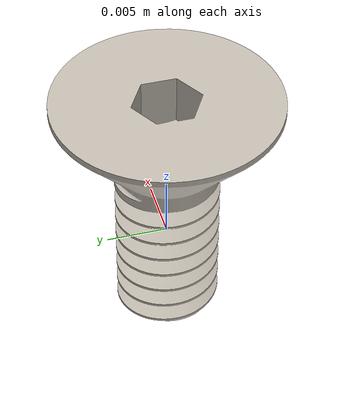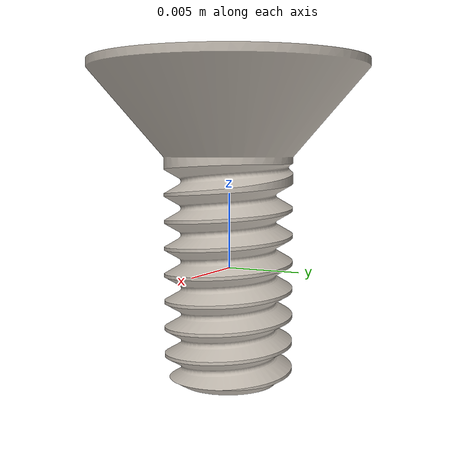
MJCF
<?xml version="1.0" encoding="UTF-8"?>
<mujoco model="flathead_capscrew_allen">
  <asset>
    <texture type="2d" file="textures/metal.png" name="metal_tex"/>
    <material name="metal_mat" texture="metal_tex" specular="0.9" shininess="0.7" reflectance="0.25"/>
    <mesh name="flathead_capscrew_allen_mesh" file="meshes/flathead_capscrew_allen.stl"/>
  </asset>
  <worldbody>
    <body name="flathead_capscrew_allen" pos="0 0 0">
      <freejoint name="flathead_capscrew_allen_joint"/>
      <geom name="flathead_capscrew_allen_visual" type="mesh" mesh="flathead_capscrew_allen_mesh"
            material="metal_mat" group="1" contype="0" conaffinity="0"/>
      <geom name="flathead_capscrew_allen_col" type="cylinder" group="3"
            size="0.00931413 0.0107394"
            pos="0 0 0.00296082" quat="1 0 0 0"
            mass="0.001" friction="1.0 0.05 0.001" condim="4"/>
    </body>
  </worldbody>
</mujoco>
